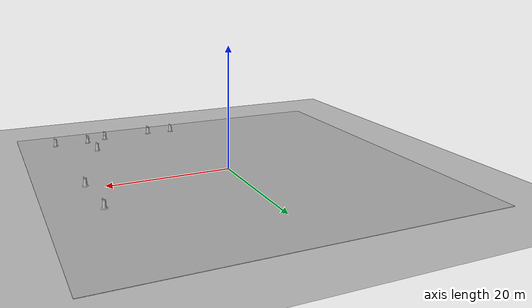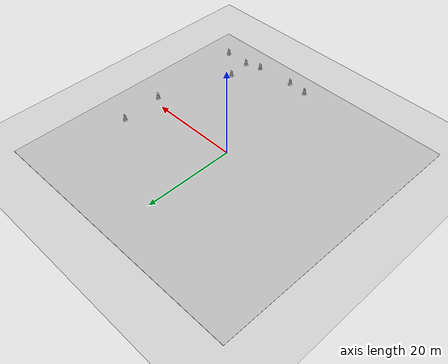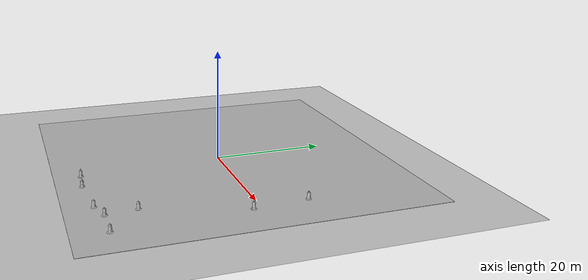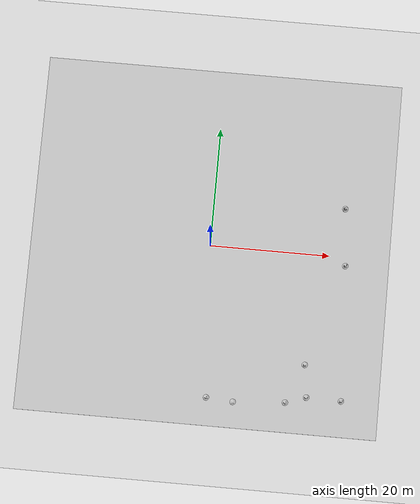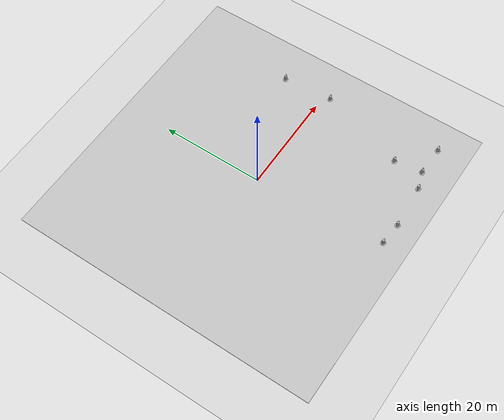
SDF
<sdf version="1.6">
 <world name="default">
  <model name="ground_plane">
   <static>1</static>
   <link name="link">
    <collision name="collision">
     <geometry><plane><normal>0 0 1</normal><size>100 100</size></plane></geometry>
     <surface>
      <contact><collide_bitmask>65535</collide_bitmask></contact>
      <friction><ode><mu>100</mu><mu2>50</mu2></ode></friction>
     </surface>
    </collision>
    <visual name="visual">
     <cast_shadows>0</cast_shadows>
     <geometry><plane><normal>0 0 1</normal><size>100 100</size></plane></geometry>
     <material>
      <script><uri>file://media/materials/scripts/gazebo.material</uri><name>Gazebo/Grey</name></script>
     </material>
    </visual>
   </link>
  </model>
  <model name="igvc_track">
   <static>1</static>
   <link name="link">
    <collision name="collision"><geometry><box><size>60 60 0.05</size></box></geometry></collision>
    <visual name="visual">
     <cast_shadows>0</cast_shadows>
     <geometry><box><size>60 60 0.05</size></box></geometry>
     <material>
      <script>
       <uri>model://igvc_track/materials/scripts</uri>
       <uri>model://igvc_track/materials/textures</uri>
       <name>vrc/ground</name>
      </script>
     </material>
    </visual>
   </link>
   <link name="link2">
    <collision name="collision"><geometry><box><size>60 60 0.05</size></box></geometry></collision>
    <visual name="visual">
     <cast_shadows>0</cast_shadows>
     <geometry><box><size>60 60 0.07</size></box></geometry>
     <material>
      <script>
       <uri>model://igvc_track/materials/scripts</uri>
       <uri>model://igvc_track/materials/textures</uri>
       <name>vrc/track</name>
      </script>
     </material>
    </visual>
   </link>
  </model>
  <model name="Construction Barrel_clone_21">
   <link name="link">
    <inertial>
     <pose>0 0 0.4 0 -0 0</pose>
     <mass>500</mass>
     <inertia><ixx>51.2096</ixx><iyy>51.2096</iyy><izz>25</izz><ixy>0</ixy><ixz>0</ixz><iyz>0</iyz></inertia>
    </inertial>
    <collision name="collision">
     <geometry><mesh><uri>model://construction_barrel/meshes/construction_barrel.dae</uri></mesh></geometry>
    </collision>
    <visual name="visual">
     <geometry><mesh><uri>model://construction_barrel/meshes/construction_barrel.dae</uri></mesh></geometry>
    </visual>
   </link>
   <pose>22.0377 8.24281 0.024999 3e-06 -0 1.4e-05</pose>
  </model>
  <model name="Construction Barrel_clone_22">
   <link name="link">
    <inertial>
     <pose>0 0 0.4 0 -0 0</pose>
     <mass>500</mass>
     <inertia><ixx>51.2096</ixx><iyy>51.2096</iyy><izz>25</izz><ixy>0</ixy><ixz>0</ixz><iyz>0</iyz></inertia>
    </inertial>
    <collision name="collision">
     <geometry><mesh><uri>model://construction_barrel/meshes/construction_barrel.dae</uri></mesh></geometry>
    </collision>
    <visual name="visual">
     <geometry><mesh><uri>model://construction_barrel/meshes/construction_barrel.dae</uri></mesh></geometry>
    </visual>
   </link>
   <pose>22.7727 -1.41136 0.024999 4e-06 -0 1.5e-05</pose>
  </model>
  <model name="Construction Barrel_clone_23">
   <link name="link">
    <inertial>
     <pose>0 0 0.4 0 -0 0</pose>
     <mass>500</mass>
     <inertia><ixx>51.2096</ixx><iyy>51.2096</iyy><izz>25</izz><ixy>0</ixy><ixz>0</ixz><iyz>0</iyz></inertia>
    </inertial>
    <collision name="collision">
     <geometry><mesh><uri>model://construction_barrel/meshes/construction_barrel.dae</uri></mesh></geometry>
    </collision>
    <visual name="visual">
     <geometry><mesh><uri>model://construction_barrel/meshes/construction_barrel.dae</uri></mesh></geometry>
    </visual>
   </link>
   <pose>18.0284 -23.9016 0.024999 -2e-06 -3e-06 1.3e-05</pose>
  </model>
  <model name="Construction Barrel_clone_24">
   <link name="link">
    <inertial>
     <pose>0 0 0.4 0 -0 0</pose>
     <mass>500</mass>
     <inertia><ixx>51.2096</ixx><iyy>51.2096</iyy><izz>25</izz><ixy>0</ixy><ixz>0</ixz><iyz>0</iyz></inertia>
    </inertial>
    <collision name="collision">
     <geometry><mesh><uri>model://construction_barrel/meshes/construction_barrel.dae</uri></mesh></geometry>
    </collision>
    <visual name="visual">
     <geometry><mesh><uri>model://construction_barrel/meshes/construction_barrel.dae</uri></mesh></geometry>
    </visual>
   </link>
   <pose>17.3611 -18.5153 0.024999 3e-06 -0 1.1e-05</pose>
  </model>
  <model name="Construction Barrel_clone_25">
   <link name="link">
    <inertial>
     <pose>0 0 0.4 0 -0 0</pose>
     <mass>500</mass>
     <inertia><ixx>51.2096</ixx><iyy>51.2096</iyy><izz>25</izz><ixy>0</ixy><ixz>0</ixz><iyz>0</iyz></inertia>
    </inertial>
    <collision name="collision">
     <geometry><mesh><uri>model://construction_barrel/meshes/construction_barrel.dae</uri></mesh></geometry>
    </collision>
    <visual name="visual">
     <geometry><mesh><uri>model://construction_barrel/meshes/construction_barrel.dae</uri></mesh></geometry>
    </visual>
   </link>
   <pose>23.79 -24.0237 0.024999 -1e-06 -2e-06 1.1e-05</pose>
  </model>
  <model name="Construction Barrel_clone_26">
   <link name="link">
    <inertial>
     <pose>0 0 0.4 0 -0 0</pose>
     <mass>500</mass>
     <inertia><ixx>51.2096</ixx><iyy>51.2096</iyy><izz>25</izz><ixy>0</ixy><ixz>0</ixz><iyz>0</iyz></inertia>
    </inertial>
    <collision name="collision">
     <geometry><mesh><uri>model://construction_barrel/meshes/construction_barrel.dae</uri></mesh></geometry>
    </collision>
    <visual name="visual">
     <geometry><mesh><uri>model://construction_barrel/meshes/construction_barrel.dae</uri></mesh></geometry>
    </visual>
   </link>
   <pose>14.6026 -25.0489 0.024999 -1e-06 -2e-06 7e-06</pose>
  </model>
  <model name="Construction Barrel_clone_27">
   <link name="link">
    <inertial>
     <pose>0 0 0.4 0 -0 0</pose>
     <mass>500</mass>
     <inertia><ixx>51.2096</ixx><iyy>51.2096</iyy><izz>25</izz><ixy>0</ixy><ixz>0</ixz><iyz>0</iyz></inertia>
    </inertial>
    <collision name="collision">
     <geometry><mesh><uri>model://construction_barrel/meshes/construction_barrel.dae</uri></mesh></geometry>
    </collision>
    <visual name="visual">
     <geometry><mesh><uri>model://construction_barrel/meshes/construction_barrel.dae</uri></mesh></geometry>
    </visual>
   </link>
   <pose>5.99311 -25.6822 0.024999 3e-06 0 9e-06</pose>
  </model>
  <model name="Construction Barrel_clone_28">
   <link name="link">
    <inertial>
     <pose>0 0 0.4 0 -0 0</pose>
     <mass>500</mass>
     <inertia><ixx>51.2096</ixx><iyy>51.2096</iyy><izz>25</izz><ixy>0</ixy><ixz>0</ixz><iyz>0</iyz></inertia>
    </inertial>
    <collision name="collision">
     <geometry><mesh><uri>model://construction_barrel/meshes/construction_barrel.dae</uri></mesh></geometry>
    </collision>
    <visual name="visual">
     <geometry><mesh><uri>model://construction_barrel/meshes/construction_barrel.dae</uri></mesh></geometry>
    </visual>
   </link>
   <pose>1.53788 -25.3324 0.025 -1e-06 -2e-06 8e-06</pose>
  </model>
 </world>
</sdf>
